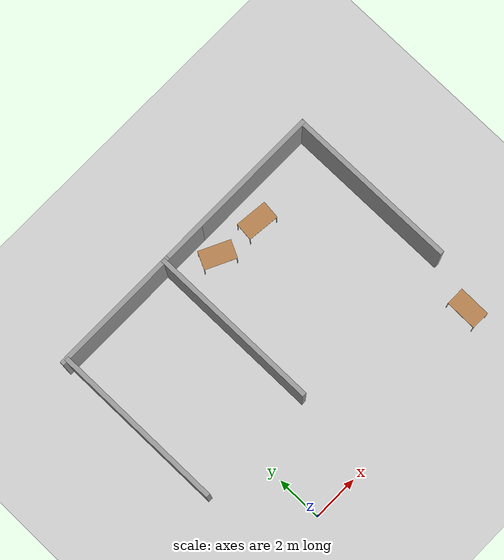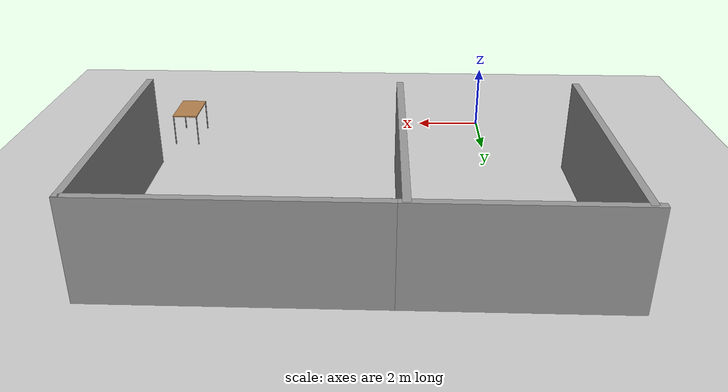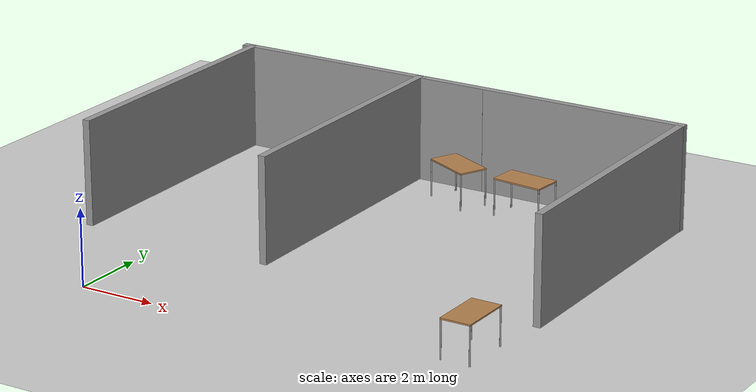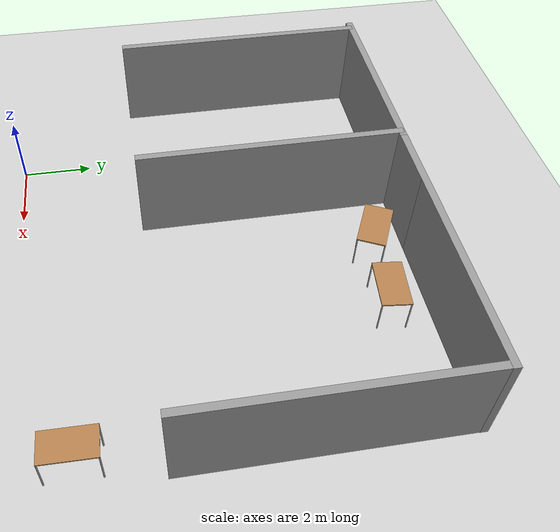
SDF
<sdf version="1.6">
 <world name="default">
  <model name="ground_plane">
   <static>1</static>
   <link name="link">
    <collision name="collision">
     <geometry><plane><normal>0 0 1</normal><size>100 100</size></plane></geometry>
     <surface><friction><ode><mu>100</mu><mu2>50</mu2></ode></friction></surface>
    </collision>
    <visual name="visual">
     <cast_shadows>0</cast_shadows>
     <geometry><plane><normal>0 0 1</normal><size>100 100</size></plane></geometry>
     <material>
      <script><uri>file://media/materials/scripts/gazebo.material</uri><name>Gazebo/Grey</name></script>
     </material>
    </visual>
   </link>
  </model>
  <model name="grey_wall_clone">
   <static>1</static>
   <link name="link">
    <pose>0 0 1.4 0 -0 0</pose>
    <collision name="collision"><geometry><box><size>7.5 0.2 2.8</size></box></geometry></collision>
    <visual name="visual">
     <cast_shadows>0</cast_shadows>
     <geometry><box><size>7.5 0.2 2.8</size></box></geometry>
     <material>
      <script>
       <uri>model://grey_wall/materials/scripts</uri>
       <uri>model://grey_wall/materials/textures</uri>
       <name>vrc/grey_wall</name>
      </script>
     </material>
    </visual>
   </link>
   <pose>1.00661 10.9168 -0.00011 0 -0 0</pose>
  </model>
  <model name="grey_wall_clone_0">
   <static>1</static>
   <link name="link">
    <pose>0 0 1.4 0 -0 0</pose>
    <collision name="collision"><geometry><box><size>7.5 0.2 2.8</size></box></geometry></collision>
    <visual name="visual">
     <cast_shadows>0</cast_shadows>
     <geometry><box><size>7.5 0.2 2.8</size></box></geometry>
     <material>
      <script>
       <uri>model://grey_wall/materials/scripts</uri>
       <uri>model://grey_wall/materials/textures</uri>
       <name>vrc/grey_wall</name>
      </script>
     </material>
    </visual>
   </link>
   <pose>6.74015 10.9183 0 0 -0 0</pose>
  </model>
  <model name="grey_wall_clone_1_clone_0">
   <static>1</static>
   <link name="link">
    <pose>0 0 1.4 0 -0 0</pose>
    <collision name="collision"><geometry><box><size>7.5 0.2 2.8</size></box></geometry></collision>
    <visual name="visual">
     <cast_shadows>0</cast_shadows>
     <geometry><box><size>7.5 0.2 2.8</size></box></geometry>
     <material>
      <script>
       <uri>model://grey_wall/materials/scripts</uri>
       <uri>model://grey_wall/materials/textures</uri>
       <name>vrc/grey_wall</name>
      </script>
     </material>
    </visual>
   </link>
   <pose>10.4003 7.24302 0 0 0 -1.56602</pose>
  </model>
  <model name="grey_wall_clone_1_clone_0_clone_1">
   <static>1</static>
   <link name="link">
    <pose>0 0 1.4 0 -0 0</pose>
    <collision name="collision"><geometry><box><size>7.5 0.2 2.8</size></box></geometry></collision>
    <visual name="visual">
     <cast_shadows>0</cast_shadows>
     <geometry><box><size>7.5 0.2 2.8</size></box></geometry>
     <material>
      <script>
       <uri>model://grey_wall/materials/scripts</uri>
       <uri>model://grey_wall/materials/textures</uri>
       <name>vrc/grey_wall</name>
      </script>
     </material>
    </visual>
   </link>
   <pose>-2.44809 7.18884 0 0 0 -1.56602</pose>
  </model>
  <model name="grey_wall_clone_1_clone_0_clone_1_clone">
   <static>1</static>
   <link name="link">
    <pose>0 0 1.4 0 -0 0</pose>
    <collision name="collision"><geometry><box><size>7.5 0.2 2.8</size></box></geometry></collision>
    <visual name="visual">
     <cast_shadows>0</cast_shadows>
     <geometry><box><size>7.5 0.2 2.8</size></box></geometry>
     <material>
      <script>
       <uri>model://grey_wall/materials/scripts</uri>
       <uri>model://grey_wall/materials/textures</uri>
       <name>vrc/grey_wall</name>
      </script>
     </material>
    </visual>
   </link>
   <pose>2.80527 7.23087 0 0 0 -1.56602</pose>
  </model>
  <model name="table_clone_3">
   <static>0</static>
   <link name="link">
    <collision name="surface">
     <pose>0 0 1 0 -0 0</pose>
     <geometry><box><size>1.5 0.8 0.03</size></box></geometry>
     <surface><friction><ode><mu>0.6</mu><mu2>0.6</mu2></ode></friction></surface>
    </collision>
    <visual name="visual1">
     <pose>0 0 1 0 -0 0</pose>
     <geometry><box><size>1.4 0.8 0.04</size></box></geometry>
     <material>
      <script><uri>file://media/materials/scripts/gazebo.material</uri><name>Gazebo/Wood</name></script>
     </material>
    </visual>
    <collision name="front_left_leg">
     <pose>0.68 0.38 0.5 0 -0 0</pose>
     <geometry><cylinder><radius>0.02</radius><length>1</length></cylinder></geometry>
    </collision>
    <visual name="front_left_leg">
     <pose>0.68 0.38 0.5 0 -0 0</pose>
     <geometry><cylinder><radius>0.02</radius><length>1</length></cylinder></geometry>
     <material>
      <script><uri>file://media/materials/scripts/gazebo.material</uri><name>Gazebo/Grey</name></script>
     </material>
    </visual>
    <collision name="front_right_leg">
     <pose>0.68 -0.38 0.5 0 -0 0</pose>
     <geometry><cylinder><radius>0.02</radius><length>1</length></cylinder></geometry>
    </collision>
    <visual name="front_right_leg">
     <pose>0.68 -0.38 0.5 0 -0 0</pose>
     <geometry><cylinder><radius>0.02</radius><length>1</length></cylinder></geometry>
     <material>
      <script><uri>file://media/materials/scripts/gazebo.material</uri><name>Gazebo/Grey</name></script>
     </material>
    </visual>
    <collision name="back_right_leg">
     <pose>-0.68 -0.38 0.5 0 -0 0</pose>
     <geometry><cylinder><radius>0.02</radius><length>1</length></cylinder></geometry>
    </collision>
    <visual name="back_right_leg">
     <pose>-0.68 -0.38 0.5 0 -0 0</pose>
     <geometry><cylinder><radius>0.02</radius><length>1</length></cylinder></geometry>
     <material>
      <script><uri>file://media/materials/scripts/gazebo.material</uri><name>Gazebo/Grey</name></script>
     </material>
    </visual>
    <collision name="back_left_leg">
     <pose>-0.68 0.38 0.5 0 -0 0</pose>
     <geometry><cylinder><radius>0.02</radius><length>1</length></cylinder></geometry>
    </collision>
    <visual name="back_left_leg">
     <pose>-0.68 0.38 0.5 0 -0 0</pose>
     <geometry><cylinder><radius>0.02</radius><length>1</length></cylinder></geometry>
     <material>
      <script><uri>file://media/materials/scripts/gazebo.material</uri><name>Gazebo/Grey</name></script>
     </material>
    </visual>
    <inertial>
     <inertia><ixx>1</ixx><ixy>0</ixy><ixz>0</ixz><iyy>1</iyy><iyz>0</iyz><izz>1</izz></inertia>
     <mass>1</mass>
    </inertial>
   </link>
   <pose>9.86597 1.39822 -2e-06 0 0 -1.58101</pose>
  </model>
  <model name="table_clone_4">
   <static>0</static>
   <link name="link">
    <collision name="surface">
     <pose>0 0 1 0 -0 0</pose>
     <geometry><box><size>1.5 0.8 0.03</size></box></geometry>
     <surface><friction><ode><mu>0.6</mu><mu2>0.6</mu2></ode></friction></surface>
    </collision>
    <visual name="visual1">
     <pose>0 0 1 0 -0 0</pose>
     <geometry><box><size>1.4 0.8 0.04</size></box></geometry>
     <material>
      <script><uri>file://media/materials/scripts/gazebo.material</uri><name>Gazebo/Wood</name></script>
     </material>
    </visual>
    <collision name="front_left_leg">
     <pose>0.68 0.38 0.5 0 -0 0</pose>
     <geometry><cylinder><radius>0.02</radius><length>1</length></cylinder></geometry>
    </collision>
    <visual name="front_left_leg">
     <pose>0.68 0.38 0.5 0 -0 0</pose>
     <geometry><cylinder><radius>0.02</radius><length>1</length></cylinder></geometry>
     <material>
      <script><uri>file://media/materials/scripts/gazebo.material</uri><name>Gazebo/Grey</name></script>
     </material>
    </visual>
    <collision name="front_right_leg">
     <pose>0.68 -0.38 0.5 0 -0 0</pose>
     <geometry><cylinder><radius>0.02</radius><length>1</length></cylinder></geometry>
    </collision>
    <visual name="front_right_leg">
     <pose>0.68 -0.38 0.5 0 -0 0</pose>
     <geometry><cylinder><radius>0.02</radius><length>1</length></cylinder></geometry>
     <material>
      <script><uri>file://media/materials/scripts/gazebo.material</uri><name>Gazebo/Grey</name></script>
     </material>
    </visual>
    <collision name="back_right_leg">
     <pose>-0.68 -0.38 0.5 0 -0 0</pose>
     <geometry><cylinder><radius>0.02</radius><length>1</length></cylinder></geometry>
    </collision>
    <visual name="back_right_leg">
     <pose>-0.68 -0.38 0.5 0 -0 0</pose>
     <geometry><cylinder><radius>0.02</radius><length>1</length></cylinder></geometry>
     <material>
      <script><uri>file://media/materials/scripts/gazebo.material</uri><name>Gazebo/Grey</name></script>
     </material>
    </visual>
    <collision name="back_left_leg">
     <pose>-0.68 0.38 0.5 0 -0 0</pose>
     <geometry><cylinder><radius>0.02</radius><length>1</length></cylinder></geometry>
    </collision>
    <visual name="back_left_leg">
     <pose>-0.68 0.38 0.5 0 -0 0</pose>
     <geometry><cylinder><radius>0.02</radius><length>1</length></cylinder></geometry>
     <material>
      <script><uri>file://media/materials/scripts/gazebo.material</uri><name>Gazebo/Grey</name></script>
     </material>
    </visual>
    <inertial>
     <inertia><ixx>1</ixx><ixy>0</ixy><ixz>0</ixz><iyy>1</iyy><iyz>0</iyz><izz>1</izz></inertia>
     <mass>1</mass>
    </inertial>
   </link>
   <pose>4.58626 9.89882 -1e-06 -1e-06 -1e-06 -0.451145</pose>
  </model>
  <model name="table_clone_5">
   <static>0</static>
   <link name="link">
    <collision name="surface">
     <pose>0 0 1 0 -0 0</pose>
     <geometry><box><size>1.5 0.8 0.03</size></box></geometry>
     <surface><friction><ode><mu>0.6</mu><mu2>0.6</mu2></ode></friction></surface>
    </collision>
    <visual name="visual1">
     <pose>0 0 1 0 -0 0</pose>
     <geometry><box><size>1.4 0.8 0.04</size></box></geometry>
     <material>
      <script><uri>file://media/materials/scripts/gazebo.material</uri><name>Gazebo/Wood</name></script>
     </material>
    </visual>
    <collision name="front_left_leg">
     <pose>0.68 0.38 0.5 0 -0 0</pose>
     <geometry><cylinder><radius>0.02</radius><length>1</length></cylinder></geometry>
    </collision>
    <visual name="front_left_leg">
     <pose>0.68 0.38 0.5 0 -0 0</pose>
     <geometry><cylinder><radius>0.02</radius><length>1</length></cylinder></geometry>
     <material>
      <script><uri>file://media/materials/scripts/gazebo.material</uri><name>Gazebo/Grey</name></script>
     </material>
    </visual>
    <collision name="front_right_leg">
     <pose>0.68 -0.38 0.5 0 -0 0</pose>
     <geometry><cylinder><radius>0.02</radius><length>1</length></cylinder></geometry>
    </collision>
    <visual name="front_right_leg">
     <pose>0.68 -0.38 0.5 0 -0 0</pose>
     <geometry><cylinder><radius>0.02</radius><length>1</length></cylinder></geometry>
     <material>
      <script><uri>file://media/materials/scripts/gazebo.material</uri><name>Gazebo/Grey</name></script>
     </material>
    </visual>
    <collision name="back_right_leg">
     <pose>-0.68 -0.38 0.5 0 -0 0</pose>
     <geometry><cylinder><radius>0.02</radius><length>1</length></cylinder></geometry>
    </collision>
    <visual name="back_right_leg">
     <pose>-0.68 -0.38 0.5 0 -0 0</pose>
     <geometry><cylinder><radius>0.02</radius><length>1</length></cylinder></geometry>
     <material>
      <script><uri>file://media/materials/scripts/gazebo.material</uri><name>Gazebo/Grey</name></script>
     </material>
    </visual>
    <collision name="back_left_leg">
     <pose>-0.68 0.38 0.5 0 -0 0</pose>
     <geometry><cylinder><radius>0.02</radius><length>1</length></cylinder></geometry>
    </collision>
    <visual name="back_left_leg">
     <pose>-0.68 0.38 0.5 0 -0 0</pose>
     <geometry><cylinder><radius>0.02</radius><length>1</length></cylinder></geometry>
     <material>
      <script><uri>file://media/materials/scripts/gazebo.material</uri><name>Gazebo/Grey</name></script>
     </material>
    </visual>
    <inertial>
     <inertia><ixx>1</ixx><ixy>0</ixy><ixz>0</ixz><iyy>1</iyy><iyz>0</iyz><izz>1</izz></inertia>
     <mass>1</mass>
    </inertial>
   </link>
   <pose>6.64272 9.72922 -9e-06 0 -1e-06 -0.101108</pose>
  </model>
 </world>
</sdf>
